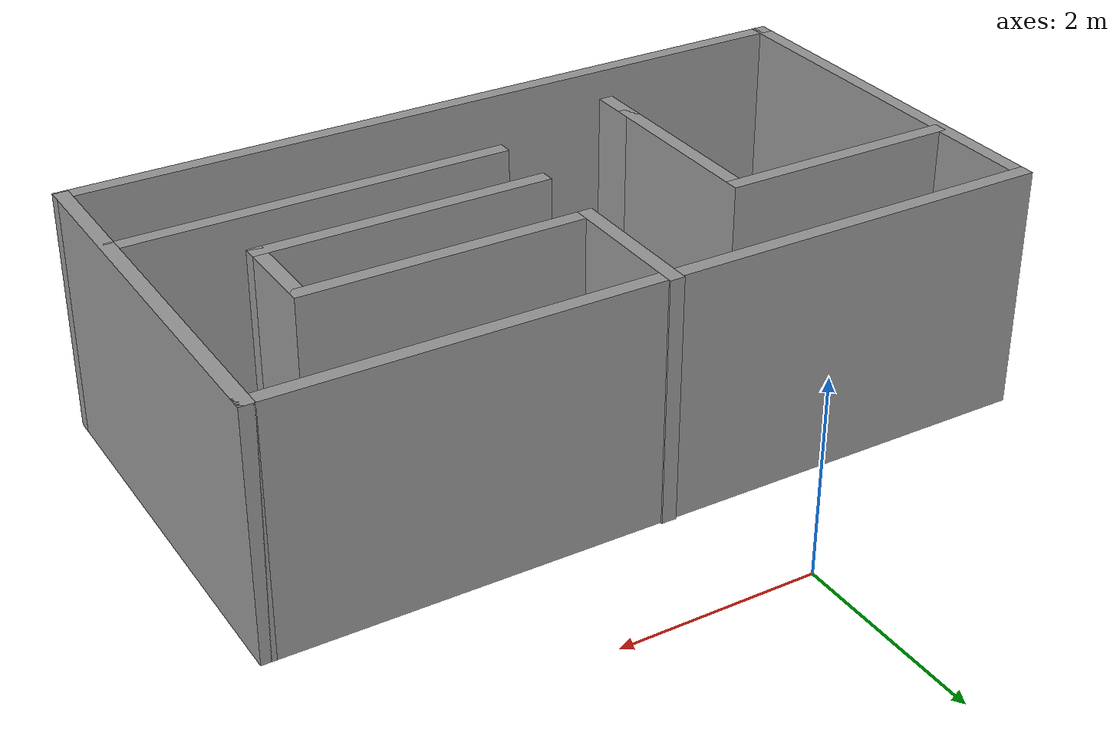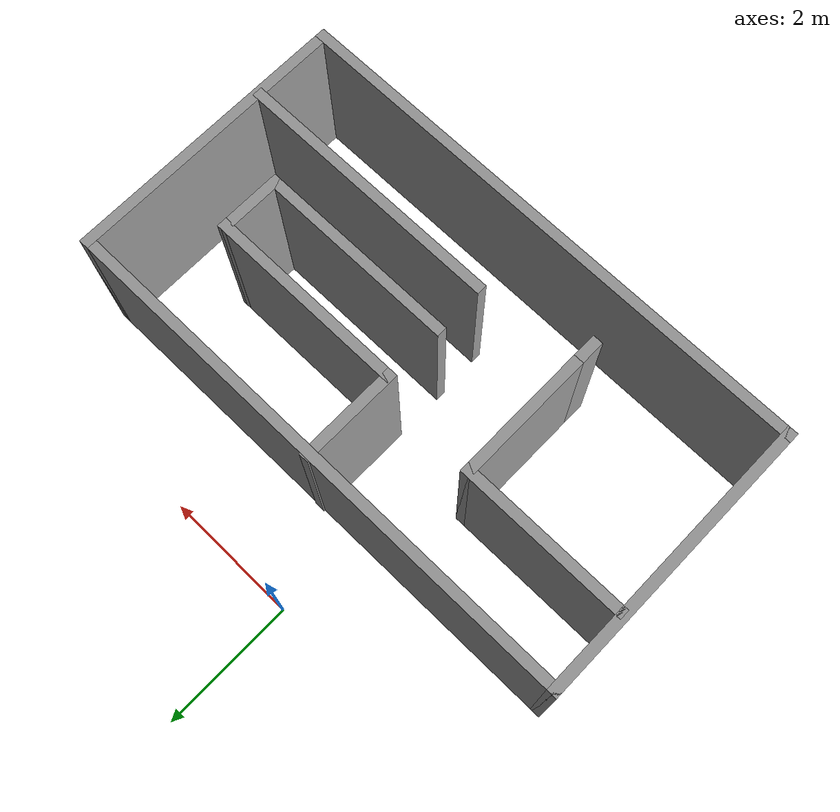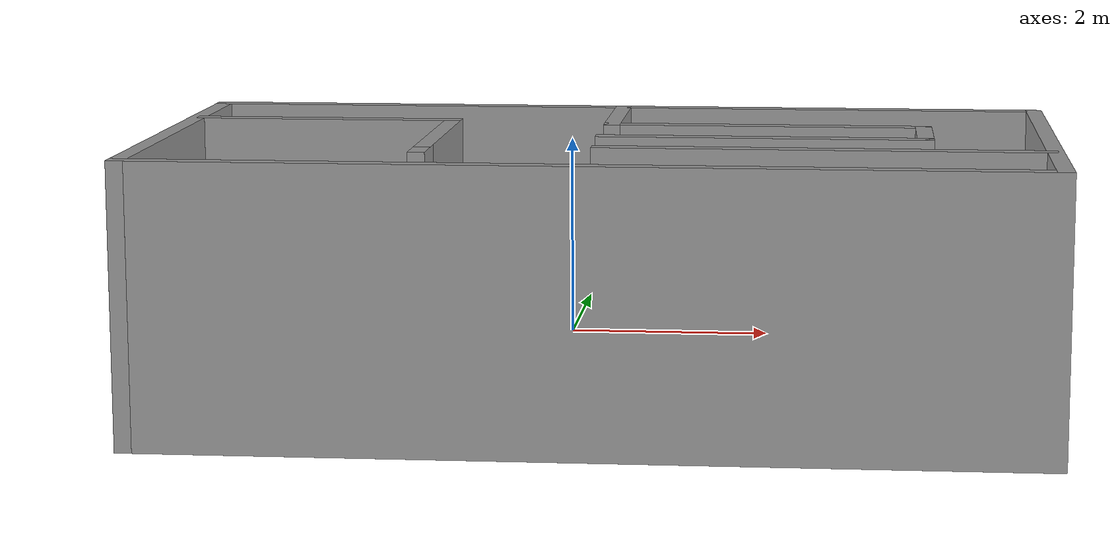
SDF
<?xml version='1.0'?>
<sdf version='1.7'>
  <model name='room'>
    <pose>0.645 -2.7875 0 0 -0 0</pose>
    <link name='Wall_1'>
      <collision name='Wall_1_Collision'>
        <geometry>
          <box>
            <size>8 0.15 2.5</size>
          </box>
        </geometry>
        <pose>0 0 1.25 0 -0 0</pose>
      </collision>
      <visual name='Wall_1_Visual'>
        <pose>0 0 1.25 0 -0 0</pose>
        <geometry>
          <box>
            <size>8 0.15 2.5</size>
          </box>
        </geometry>
        <material>
          <script>
            <uri>file://media/materials/scripts/gazebo.material</uri>
            <name>Gazebo/Grey</name>
          </script>
          <ambient>1 1 1 1</ambient>
        </material>
        <meta>
          <layer>0</layer>
        </meta>
      </visual>
      <pose>-0 1.3875 0 0 -0 0</pose>
    </link>
    <link name='Wall_11'>
      <collision name='Wall_11_Collision'>
        <geometry>
          <box>
            <size>4 0.15 2.5</size>
          </box>
        </geometry>
        <pose>0 0 1.25 0 -0 0</pose>
      </collision>
      <visual name='Wall_11_Visual'>
        <pose>0 0 1.25 0 -0 0</pose>
        <geometry>
          <box>
            <size>4 0.15 2.5</size>
          </box>
        </geometry>
        <material>
          <script>
            <uri>file://media/materials/scripts/gazebo.material</uri>
            <name>Gazebo/Grey</name>
          </script>
          <ambient>1 1 1 1</ambient>
        </material>
        <meta>
          <layer>0</layer>
        </meta>
      </visual>
      <pose>1.95 -1.5325 0 0 -0 0</pose>
    </link>
    <link name='Wall_13'>
      <collision name='Wall_13_Collision'>
        <geometry>
          <box>
            <size>2.5 0.15 2.5</size>
          </box>
        </geometry>
        <pose>0 0 1.25 0 -0 0</pose>
      </collision>
      <visual name='Wall_13_Visual'>
        <pose>0 0 1.25 0 -0 0</pose>
        <geometry>
          <box>
            <size>2.5 0.15 2.5</size>
          </box>
        </geometry>
        <material>
          <script>
            <uri>file://media/materials/scripts/gazebo.material</uri>
            <name>Gazebo/Grey</name>
          </script>
          <ambient>1 1 1 1</ambient>
        </material>
        <meta>
          <layer>0</layer>
        </meta>
      </visual>
      <pose>-2.68 0.2375 0 0 -0 0</pose>
    </link>
    <link name='Wall_14'>
      <collision name='Wall_14_Collision'>
        <geometry>
          <box>
            <size>2 0.15 2.5</size>
          </box>
        </geometry>
        <pose>0 0 1.25 0 -0 0</pose>
      </collision>
      <visual name='Wall_14_Visual'>
        <pose>0 0 1.25 0 -0 0</pose>
        <geometry>
          <box>
            <size>2 0.15 2.5</size>
          </box>
        </geometry>
        <material>
          <script>
            <uri>file://media/materials/scripts/gazebo.material</uri>
            <name>Gazebo/Grey</name>
          </script>
          <ambient>1 1 1 1</ambient>
        </material>
        <meta>
          <layer>0</layer>
        </meta>
      </visual>
      <pose>-1.505 -0.6875 0 0 -0 -1.5708</pose>
    </link>
    <link name='Wall_15'>
      <collision name='Wall_15_Collision'>
        <geometry>
          <box>
            <size>0.5 0.15 2.5</size>
          </box>
        </geometry>
        <pose>0 0 1.25 0 -0 0</pose>
      </collision>
      <visual name='Wall_15_Visual'>
        <pose>0 0 1.25 0 -0 0</pose>
        <geometry>
          <box>
            <size>0.5 0.15 2.5</size>
          </box>
        </geometry>
        <material>
          <script>
            <uri>file://media/materials/scripts/gazebo.material</uri>
            <name>Gazebo/Grey</name>
          </script>
          <ambient>1 1 1 1</ambient>
        </material>
        <meta>
          <layer>0</layer>
        </meta>
      </visual>
      <pose>-1.505 -1.7875 0 0 -0 -1.5708</pose>
    </link>
    <link name='Wall_2'>
      <collision name='Wall_2_Collision'>
        <geometry>
          <box>
            <size>4.25 0.15 2.5</size>
          </box>
        </geometry>
        <pose>0 0 1.25 0 -0 0</pose>
      </collision>
      <visual name='Wall_2_Visual'>
        <pose>0 0 1.25 0 -0 0</pose>
        <geometry>
          <box>
            <size>4.25 0.15 2.5</size>
          </box>
        </geometry>
        <material>
          <script>
            <uri>file://media/materials/scripts/gazebo.material</uri>
            <name>Gazebo/Grey</name>
          </script>
          <ambient>1 1 1 1</ambient>
        </material>
        <meta>
          <layer>0</layer>
        </meta>
      </visual>
      <pose>3.925 -0.6625 0 0 -0 -1.5708</pose>
    </link>
    <link name='Wall_3'>
      <collision name='Wall_3_Collision'>
        <geometry>
          <box>
            <size>8 0.15 2.5</size>
          </box>
        </geometry>
        <pose>0 0 1.25 0 -0 0</pose>
      </collision>
      <visual name='Wall_3_Visual'>
        <pose>0 0 1.25 0 -0 0</pose>
        <geometry>
          <box>
            <size>8 0.15 2.5</size>
          </box>
        </geometry>
        <material>
          <script>
            <uri>file://media/materials/scripts/gazebo.material</uri>
            <name>Gazebo/Grey</name>
          </script>
          <ambient>1 1 1 1</ambient>
        </material>
        <meta>
          <layer>0</layer>
        </meta>
      </visual>
      <pose>-0 -2.7125 0 0 -0 3.14159</pose>
    </link>
    <link name='Wall_4'>
      <collision name='Wall_4_Collision'>
        <geometry>
          <box>
            <size>4.25 0.15 2.5</size>
          </box>
        </geometry>
        <pose>0 0 1.25 0 -0 0</pose>
      </collision>
      <visual name='Wall_4_Visual'>
        <pose>0 0 1.25 0 -0 0</pose>
        <geometry>
          <box>
            <size>4.25 0.15 2.5</size>
          </box>
        </geometry>
        <material>
          <script>
            <uri>file://media/materials/scripts/gazebo.material</uri>
            <name>Gazebo/Grey</name>
          </script>
          <ambient>1 1 1 1</ambient>
        </material>
        <meta>
          <layer>0</layer>
        </meta>
      </visual>
      <pose>-3.925 -0.6625 0 0 -0 1.5708</pose>
    </link>
    <link name='Wall_6'>
      <collision name='Wall_6_Collision'>
        <geometry>
          <box>
            <size>1.5 0.15 2.5</size>
          </box>
        </geometry>
        <pose>0 0 1.25 0 -0 0</pose>
      </collision>
      <visual name='Wall_6_Visual'>
        <pose>0 0 1.25 0 -0 0</pose>
        <geometry>
          <box>
            <size>1.5 0.15 2.5</size>
          </box>
        </geometry>
        <material>
          <script>
            <uri>file://media/materials/scripts/gazebo.material</uri>
            <name>Gazebo/Grey</name>
          </script>
          <ambient>1 1 1 1</ambient>
        </material>
        <meta>
          <layer>0</layer>
        </meta>
      </visual>
      <pose>-0.005 0.7325 0 0 -0 -1.5708</pose>
    </link>
    <link name='Wall_7'>
      <collision name='Wall_7_Collision'>
        <geometry>
          <box>
            <size>3 0.15 2.5</size>
          </box>
        </geometry>
        <pose>0 0 1.25 0 -0 0</pose>
      </collision>
      <visual name='Wall_7_Visual'>
        <pose>0 0 1.25 0 -0 0</pose>
        <geometry>
          <box>
            <size>3 0.15 2.5</size>
          </box>
        </geometry>
        <material>
          <script>
            <uri>file://media/materials/scripts/gazebo.material</uri>
            <name>Gazebo/Grey</name>
          </script>
          <ambient>1 1 1 1</ambient>
        </material>
        <meta>
          <layer>0</layer>
        </meta>
      </visual>
      <pose>1.42 0.0575 0 0 -0 0</pose>
    </link>
    <link name='Wall_8'>
      <collision name='Wall_8_Collision'>
        <geometry>
          <box>
            <size>1 0.15 2.5</size>
          </box>
        </geometry>
        <pose>0 0 1.25 0 -0 0</pose>
      </collision>
      <visual name='Wall_8_Visual'>
        <pose>0 0 1.25 0 -0 0</pose>
        <geometry>
          <box>
            <size>1 0.15 2.5</size>
          </box>
        </geometry>
        <material>
          <script>
            <uri>file://media/materials/scripts/gazebo.material</uri>
            <name>Gazebo/Grey</name>
          </script>
          <ambient>1 1 1 1</ambient>
        </material>
        <meta>
          <layer>0</layer>
        </meta>
      </visual>
      <pose>2.845 -0.3675 0 0 -0 -1.5708</pose>
    </link>
    <link name='Wall_9'>
      <collision name='Wall_9_Collision'>
        <geometry>
          <box>
            <size>3 0.15 2.5</size>
          </box>
        </geometry>
        <pose>0 0 1.25 0 -0 0</pose>
      </collision>
      <visual name='Wall_9_Visual'>
        <pose>0 0 1.25 0 -0 0</pose>
        <geometry>
          <box>
            <size>3 0.15 2.5</size>
          </box>
        </geometry>
        <material>
          <script>
            <uri>file://media/materials/scripts/gazebo.material</uri>
            <name>Gazebo/Grey</name>
          </script>
          <ambient>1 1 1 1</ambient>
        </material>
        <meta>
          <layer>0</layer>
        </meta>
      </visual>
      <pose>1.42 -0.7925 0 0 -0 3.14159</pose>
    </link>
    <static>1</static>
  </model>
</sdf>
